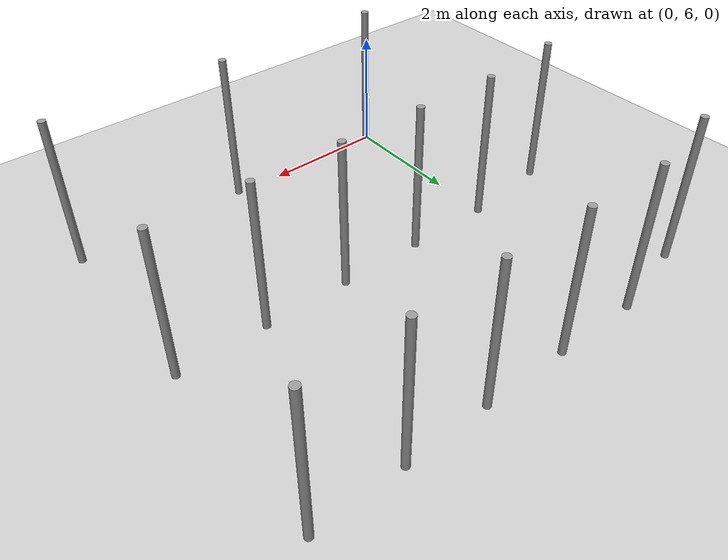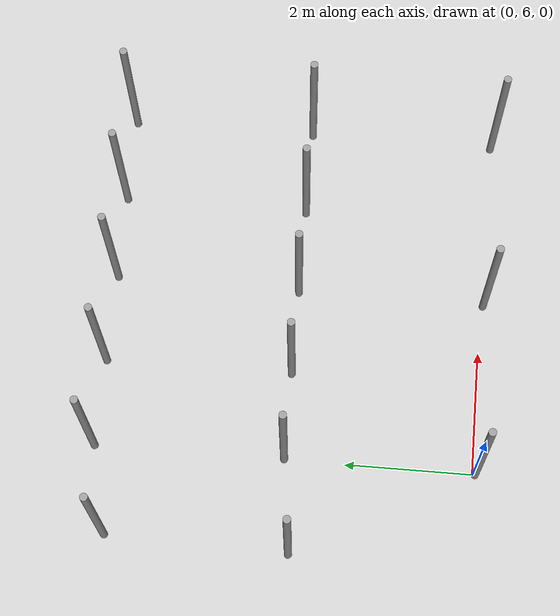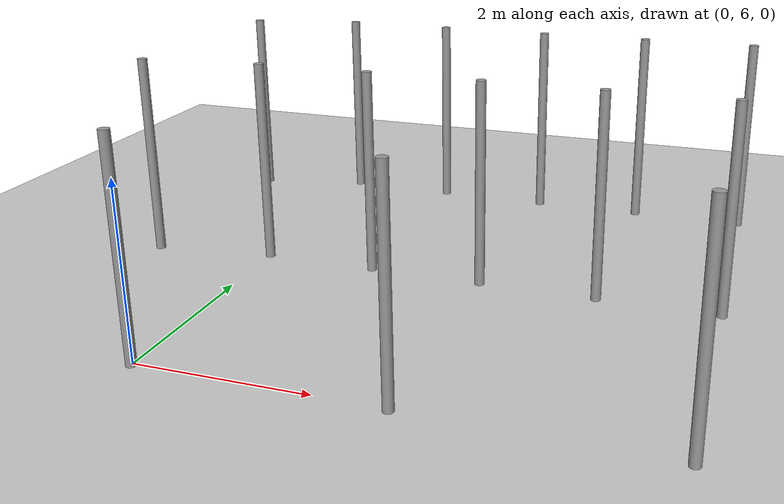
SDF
<sdf version="1.6">
 <world name="default">
  <model name="ground_plane">
   <static>1</static>
   <link name="link">
    <collision name="collision">
     <geometry><plane><normal>0 0 1</normal><size>100 100</size></plane></geometry>
     <surface><friction><ode><mu>100</mu><mu2>50</mu2></ode></friction></surface>
    </collision>
    <visual name="visual">
     <cast_shadows>0</cast_shadows>
     <geometry><plane><normal>0 0 1</normal><size>100 100</size></plane></geometry>
     <material>
      <script><uri>file://media/materials/scripts/gazebo.material</uri><name>Gazebo/Grey</name></script>
     </material>
    </visual>
   </link>
  </model>
  <model name="pole">
   <link name="link_0">
    <inertial>
     <mass>0.0364582</mass>
     <inertia>
      <ixx>0.00312124</ixx>
      <ixy>0</ixy>
      <ixz>0</ixz>
      <iyy>0.00312124</iyy>
      <iyz>0</iyz>
      <izz>0.00016615</izz>
     </inertia>
    </inertial>
    <visual name="visual">
     <geometry><cylinder><radius>0.06</radius><length>2.5</length></cylinder></geometry>
     <material>
      <lighting>1</lighting>
      <script><uri>file://media/materials/scripts/gazebo.material</uri><name>Gazebo/Grey</name></script>
      <ambient>0.3 0.3 0.3 1</ambient>
      <diffuse>0.7 0.7 0.7 1</diffuse>
      <specular>0.01 0.01 0.01 1</specular>
      <emissive>0 0 0 1</emissive>
      <shader type="vertex"><normal_map>__default__</normal_map></shader>
     </material>
    </visual>
    <collision name="collision">
     <geometry><cylinder><radius>0.06</radius><length>2.5</length></cylinder></geometry>
     <surface>
      <friction>
       <ode><mu>1</mu><mu2>1</mu2><fdir1>0 0 0</fdir1><slip1>0</slip1><slip2>0</slip2></ode>
       <torsional>
        <coefficient>1</coefficient>
        <patch_radius>0</patch_radius>
        <surface_radius>0</surface_radius>
        <use_patch_radius>1</use_patch_radius>
        <ode><slip>0</slip></ode>
       </torsional>
      </friction>
      <bounce><restitution_coefficient>0</restitution_coefficient><threshold>1e+06</threshold></bounce>
      <contact>
       <collide_without_contact>0</collide_without_contact>
       <collide_without_contact_bitmask>1</collide_without_contact_bitmask>
       <collide_bitmask>1</collide_bitmask>
       <ode>
        <soft_cfm>0</soft_cfm>
        <soft_erp>0.2</soft_erp>
        <kp>1e+13</kp>
        <kd>1</kd>
        <max_vel>0.01</max_vel>
        <min_depth>0</min_depth>
       </ode>
       <bullet>
        <split_impulse>1</split_impulse>
        <split_impulse_penetration_threshold>-0.01</split_impulse_penetration_threshold>
        <soft_cfm>0</soft_cfm>
        <soft_erp>0.2</soft_erp>
        <kp>1e+13</kp>
        <kd>1</kd>
       </bullet>
      </contact>
     </surface>
    </collision>
   </link>
   <static>0</static>
   <pose>0.00729 5.96546 1.24999 0 1e-06 -0.061917</pose>
  </model>
  <model name="pole_0">
   <link name="link_0">
    <inertial>
     <mass>0.0364582</mass>
     <inertia>
      <ixx>0.00312124</ixx>
      <ixy>0</ixy>
      <ixz>0</ixz>
      <iyy>0.00312124</iyy>
      <iyz>0</iyz>
      <izz>0.00016615</izz>
     </inertia>
    </inertial>
    <visual name="visual">
     <geometry><cylinder><radius>0.06</radius><length>2.5</length></cylinder></geometry>
     <material>
      <lighting>1</lighting>
      <script><uri>file://media/materials/scripts/gazebo.material</uri><name>Gazebo/Grey</name></script>
      <ambient>0.3 0.3 0.3 1</ambient>
      <diffuse>0.7 0.7 0.7 1</diffuse>
      <specular>0.01 0.01 0.01 1</specular>
      <emissive>0 0 0 1</emissive>
      <shader type="vertex"><normal_map>__default__</normal_map></shader>
     </material>
    </visual>
    <collision name="collision">
     <geometry><cylinder><radius>0.06</radius><length>2.5</length></cylinder></geometry>
     <surface>
      <friction>
       <ode><mu>1</mu><mu2>1</mu2><fdir1>0 0 0</fdir1><slip1>0</slip1><slip2>0</slip2></ode>
       <torsional>
        <coefficient>1</coefficient>
        <patch_radius>0</patch_radius>
        <surface_radius>0</surface_radius>
        <use_patch_radius>1</use_patch_radius>
        <ode><slip>0</slip></ode>
       </torsional>
      </friction>
      <bounce><restitution_coefficient>0</restitution_coefficient><threshold>1e+06</threshold></bounce>
      <contact>
       <collide_without_contact>0</collide_without_contact>
       <collide_without_contact_bitmask>1</collide_without_contact_bitmask>
       <collide_bitmask>1</collide_bitmask>
       <ode>
        <soft_cfm>0</soft_cfm>
        <soft_erp>0.2</soft_erp>
        <kp>1e+13</kp>
        <kd>1</kd>
        <max_vel>0.01</max_vel>
        <min_depth>0</min_depth>
       </ode>
       <bullet>
        <split_impulse>1</split_impulse>
        <split_impulse_penetration_threshold>-0.01</split_impulse_penetration_threshold>
        <soft_cfm>0</soft_cfm>
        <soft_erp>0.2</soft_erp>
        <kp>1e+13</kp>
        <kd>1</kd>
       </bullet>
      </contact>
     </surface>
    </collision>
   </link>
   <static>0</static>
   <pose>0.014052 8.94503 1.24999 -1e-06 1e-06 -0.061083</pose>
  </model>
  <model name="pole_1">
   <link name="link_0">
    <inertial>
     <mass>0.0364582</mass>
     <inertia>
      <ixx>0.00312124</ixx>
      <ixy>0</ixy>
      <ixz>0</ixz>
      <iyy>0.00312124</iyy>
      <iyz>0</iyz>
      <izz>0.00016615</izz>
     </inertia>
    </inertial>
    <visual name="visual">
     <geometry><cylinder><radius>0.06</radius><length>2.5</length></cylinder></geometry>
     <material>
      <lighting>1</lighting>
      <script><uri>file://media/materials/scripts/gazebo.material</uri><name>Gazebo/Grey</name></script>
      <ambient>0.3 0.3 0.3 1</ambient>
      <diffuse>0.7 0.7 0.7 1</diffuse>
      <specular>0.01 0.01 0.01 1</specular>
      <emissive>0 0 0 1</emissive>
      <shader type="vertex"><normal_map>__default__</normal_map></shader>
     </material>
    </visual>
    <collision name="collision">
     <geometry><cylinder><radius>0.06</radius><length>2.5</length></cylinder></geometry>
     <surface>
      <friction>
       <ode><mu>1</mu><mu2>1</mu2><fdir1>0 0 0</fdir1><slip1>0</slip1><slip2>0</slip2></ode>
       <torsional>
        <coefficient>1</coefficient>
        <patch_radius>0</patch_radius>
        <surface_radius>0</surface_radius>
        <use_patch_radius>1</use_patch_radius>
        <ode><slip>0</slip></ode>
       </torsional>
      </friction>
      <bounce><restitution_coefficient>0</restitution_coefficient><threshold>1e+06</threshold></bounce>
      <contact>
       <collide_without_contact>0</collide_without_contact>
       <collide_without_contact_bitmask>1</collide_without_contact_bitmask>
       <collide_bitmask>1</collide_bitmask>
       <ode>
        <soft_cfm>0</soft_cfm>
        <soft_erp>0.2</soft_erp>
        <kp>1e+13</kp>
        <kd>1</kd>
        <max_vel>0.01</max_vel>
        <min_depth>0</min_depth>
       </ode>
       <bullet>
        <split_impulse>1</split_impulse>
        <split_impulse_penetration_threshold>-0.01</split_impulse_penetration_threshold>
        <soft_cfm>0</soft_cfm>
        <soft_erp>0.2</soft_erp>
        <kp>1e+13</kp>
        <kd>1</kd>
       </bullet>
      </contact>
     </surface>
    </collision>
   </link>
   <static>0</static>
   <pose>-0.007502 11.9252 1.24999 -1e-06 1e-06 -0.066059</pose>
  </model>
  <model name="pole_13">
   <link name="link_0">
    <inertial>
     <mass>0.0364582</mass>
     <inertia>
      <ixx>0.00312124</ixx>
      <ixy>0</ixy>
      <ixz>0</ixz>
      <iyy>0.00312124</iyy>
      <iyz>0</iyz>
      <izz>0.00016615</izz>
     </inertia>
    </inertial>
    <visual name="visual">
     <geometry><cylinder><radius>0.06</radius><length>2.5</length></cylinder></geometry>
     <material>
      <lighting>1</lighting>
      <script><uri>file://media/materials/scripts/gazebo.material</uri><name>Gazebo/Grey</name></script>
      <ambient>0.3 0.3 0.3 1</ambient>
      <diffuse>0.7 0.7 0.7 1</diffuse>
      <specular>0.01 0.01 0.01 1</specular>
      <emissive>0 0 0 1</emissive>
      <shader type="vertex"><normal_map>__default__</normal_map></shader>
     </material>
    </visual>
    <collision name="collision">
     <geometry><cylinder><radius>0.06</radius><length>2.5</length></cylinder></geometry>
     <surface>
      <friction>
       <ode><mu>1</mu><mu2>1</mu2><fdir1>0 0 0</fdir1><slip1>0</slip1><slip2>0</slip2></ode>
       <torsional>
        <coefficient>1</coefficient>
        <patch_radius>0</patch_radius>
        <surface_radius>0</surface_radius>
        <use_patch_radius>1</use_patch_radius>
        <ode><slip>0</slip></ode>
       </torsional>
      </friction>
      <bounce><restitution_coefficient>0</restitution_coefficient><threshold>1e+06</threshold></bounce>
      <contact>
       <collide_without_contact>0</collide_without_contact>
       <collide_without_contact_bitmask>1</collide_without_contact_bitmask>
       <collide_bitmask>1</collide_bitmask>
       <ode>
        <soft_cfm>0</soft_cfm>
        <soft_erp>0.2</soft_erp>
        <kp>1e+13</kp>
        <kd>1</kd>
        <max_vel>0.01</max_vel>
        <min_depth>0</min_depth>
       </ode>
       <bullet>
        <split_impulse>1</split_impulse>
        <split_impulse_penetration_threshold>-0.01</split_impulse_penetration_threshold>
        <soft_cfm>0</soft_cfm>
        <soft_erp>0.2</soft_erp>
        <kp>1e+13</kp>
        <kd>1</kd>
       </bullet>
      </contact>
     </surface>
    </collision>
   </link>
   <static>0</static>
   <pose>2.80861 5.96514 1.25 -1e-06 -1e-06 -0.056191</pose>
  </model>
  <model name="pole_15">
   <link name="link_0">
    <inertial>
     <mass>0.0364582</mass>
     <inertia>
      <ixx>0.00312124</ixx>
      <ixy>0</ixy>
      <ixz>0</ixz>
      <iyy>0.00312124</iyy>
      <iyz>0</iyz>
      <izz>0.00016615</izz>
     </inertia>
    </inertial>
    <visual name="visual">
     <geometry><cylinder><radius>0.06</radius><length>2.5</length></cylinder></geometry>
     <material>
      <lighting>1</lighting>
      <script><uri>file://media/materials/scripts/gazebo.material</uri><name>Gazebo/Grey</name></script>
      <ambient>0.3 0.3 0.3 1</ambient>
      <diffuse>0.7 0.7 0.7 1</diffuse>
      <specular>0.01 0.01 0.01 1</specular>
      <emissive>0 0 0 1</emissive>
      <shader type="vertex"><normal_map>__default__</normal_map></shader>
     </material>
    </visual>
    <collision name="collision">
     <geometry><cylinder><radius>0.06</radius><length>2.5</length></cylinder></geometry>
     <surface>
      <friction>
       <ode><mu>1</mu><mu2>1</mu2><fdir1>0 0 0</fdir1><slip1>0</slip1><slip2>0</slip2></ode>
       <torsional>
        <coefficient>1</coefficient>
        <patch_radius>0</patch_radius>
        <surface_radius>0</surface_radius>
        <use_patch_radius>1</use_patch_radius>
        <ode><slip>0</slip></ode>
       </torsional>
      </friction>
      <bounce><restitution_coefficient>0</restitution_coefficient><threshold>1e+06</threshold></bounce>
      <contact>
       <collide_without_contact>0</collide_without_contact>
       <collide_without_contact_bitmask>1</collide_without_contact_bitmask>
       <collide_bitmask>1</collide_bitmask>
       <ode>
        <soft_cfm>0</soft_cfm>
        <soft_erp>0.2</soft_erp>
        <kp>1e+13</kp>
        <kd>1</kd>
        <max_vel>0.01</max_vel>
        <min_depth>0</min_depth>
       </ode>
       <bullet>
        <split_impulse>1</split_impulse>
        <split_impulse_penetration_threshold>-0.01</split_impulse_penetration_threshold>
        <soft_cfm>0</soft_cfm>
        <soft_erp>0.2</soft_erp>
        <kp>1e+13</kp>
        <kd>1</kd>
       </bullet>
      </contact>
     </surface>
    </collision>
   </link>
   <static>0</static>
   <pose>5.62404 5.96502 1.24999 0 2e-06 -0.052758</pose>
  </model>
  <model name="pole_16">
   <link name="link_0">
    <inertial>
     <mass>0.0364582</mass>
     <inertia>
      <ixx>0.00312124</ixx>
      <ixy>0</ixy>
      <ixz>0</ixz>
      <iyy>0.00312124</iyy>
      <iyz>0</iyz>
      <izz>0.00016615</izz>
     </inertia>
    </inertial>
    <visual name="visual">
     <geometry><cylinder><radius>0.06</radius><length>2.5</length></cylinder></geometry>
     <material>
      <lighting>1</lighting>
      <script><uri>file://media/materials/scripts/gazebo.material</uri><name>Gazebo/Grey</name></script>
      <ambient>0.3 0.3 0.3 1</ambient>
      <diffuse>0.7 0.7 0.7 1</diffuse>
      <specular>0.01 0.01 0.01 1</specular>
      <emissive>0 0 0 1</emissive>
      <shader type="vertex"><normal_map>__default__</normal_map></shader>
     </material>
    </visual>
    <collision name="collision">
     <geometry><cylinder><radius>0.06</radius><length>2.5</length></cylinder></geometry>
     <surface>
      <friction>
       <ode><mu>1</mu><mu2>1</mu2><fdir1>0 0 0</fdir1><slip1>0</slip1><slip2>0</slip2></ode>
       <torsional>
        <coefficient>1</coefficient>
        <patch_radius>0</patch_radius>
        <surface_radius>0</surface_radius>
        <use_patch_radius>1</use_patch_radius>
        <ode><slip>0</slip></ode>
       </torsional>
      </friction>
      <bounce><restitution_coefficient>0</restitution_coefficient><threshold>1e+06</threshold></bounce>
      <contact>
       <collide_without_contact>0</collide_without_contact>
       <collide_without_contact_bitmask>1</collide_without_contact_bitmask>
       <collide_bitmask>1</collide_bitmask>
       <ode>
        <soft_cfm>0</soft_cfm>
        <soft_erp>0.2</soft_erp>
        <kp>1e+13</kp>
        <kd>1</kd>
        <max_vel>0.01</max_vel>
        <min_depth>0</min_depth>
       </ode>
       <bullet>
        <split_impulse>1</split_impulse>
        <split_impulse_penetration_threshold>-0.01</split_impulse_penetration_threshold>
        <soft_cfm>0</soft_cfm>
        <soft_erp>0.2</soft_erp>
        <kp>1e+13</kp>
        <kd>1</kd>
       </bullet>
      </contact>
     </surface>
    </collision>
   </link>
   <static>0</static>
   <pose>1.41372 8.94489 1.24999 -1e-06 1e-06 -0.058688</pose>
  </model>
  <model name="pole_17">
   <link name="link_0">
    <inertial>
     <mass>0.0364582</mass>
     <inertia>
      <ixx>0.00312124</ixx>
      <ixy>0</ixy>
      <ixz>0</ixz>
      <iyy>0.00312124</iyy>
      <iyz>0</iyz>
      <izz>0.00016615</izz>
     </inertia>
    </inertial>
    <visual name="visual">
     <geometry><cylinder><radius>0.06</radius><length>2.5</length></cylinder></geometry>
     <material>
      <lighting>1</lighting>
      <script><uri>file://media/materials/scripts/gazebo.material</uri><name>Gazebo/Grey</name></script>
      <ambient>0.3 0.3 0.3 1</ambient>
      <diffuse>0.7 0.7 0.7 1</diffuse>
      <specular>0.01 0.01 0.01 1</specular>
      <emissive>0 0 0 1</emissive>
      <shader type="vertex"><normal_map>__default__</normal_map></shader>
     </material>
    </visual>
    <collision name="collision">
     <geometry><cylinder><radius>0.06</radius><length>2.5</length></cylinder></geometry>
     <surface>
      <friction>
       <ode><mu>1</mu><mu2>1</mu2><fdir1>0 0 0</fdir1><slip1>0</slip1><slip2>0</slip2></ode>
       <torsional>
        <coefficient>1</coefficient>
        <patch_radius>0</patch_radius>
        <surface_radius>0</surface_radius>
        <use_patch_radius>1</use_patch_radius>
        <ode><slip>0</slip></ode>
       </torsional>
      </friction>
      <bounce><restitution_coefficient>0</restitution_coefficient><threshold>1e+06</threshold></bounce>
      <contact>
       <collide_without_contact>0</collide_without_contact>
       <collide_without_contact_bitmask>1</collide_without_contact_bitmask>
       <collide_bitmask>1</collide_bitmask>
       <ode>
        <soft_cfm>0</soft_cfm>
        <soft_erp>0.2</soft_erp>
        <kp>1e+13</kp>
        <kd>1</kd>
        <max_vel>0.01</max_vel>
        <min_depth>0</min_depth>
       </ode>
       <bullet>
        <split_impulse>1</split_impulse>
        <split_impulse_penetration_threshold>-0.01</split_impulse_penetration_threshold>
        <soft_cfm>0</soft_cfm>
        <soft_erp>0.2</soft_erp>
        <kp>1e+13</kp>
        <kd>1</kd>
       </bullet>
      </contact>
     </surface>
    </collision>
   </link>
   <static>0</static>
   <pose>2.80046 8.9447 1.25 -1e-06 1e-06 -0.055294</pose>
  </model>
  <model name="pole_18">
   <link name="link_0">
    <inertial>
     <mass>0.0364582</mass>
     <inertia>
      <ixx>0.00312124</ixx>
      <ixy>0</ixy>
      <ixz>0</ixz>
      <iyy>0.00312124</iyy>
      <iyz>0</iyz>
      <izz>0.00016615</izz>
     </inertia>
    </inertial>
    <visual name="visual">
     <geometry><cylinder><radius>0.06</radius><length>2.5</length></cylinder></geometry>
     <material>
      <lighting>1</lighting>
      <script><uri>file://media/materials/scripts/gazebo.material</uri><name>Gazebo/Grey</name></script>
      <ambient>0.3 0.3 0.3 1</ambient>
      <diffuse>0.7 0.7 0.7 1</diffuse>
      <specular>0.01 0.01 0.01 1</specular>
      <emissive>0 0 0 1</emissive>
      <shader type="vertex"><normal_map>__default__</normal_map></shader>
     </material>
    </visual>
    <collision name="collision">
     <geometry><cylinder><radius>0.06</radius><length>2.5</length></cylinder></geometry>
     <surface>
      <friction>
       <ode><mu>1</mu><mu2>1</mu2><fdir1>0 0 0</fdir1><slip1>0</slip1><slip2>0</slip2></ode>
       <torsional>
        <coefficient>1</coefficient>
        <patch_radius>0</patch_radius>
        <surface_radius>0</surface_radius>
        <use_patch_radius>1</use_patch_radius>
        <ode><slip>0</slip></ode>
       </torsional>
      </friction>
      <bounce><restitution_coefficient>0</restitution_coefficient><threshold>1e+06</threshold></bounce>
      <contact>
       <collide_without_contact>0</collide_without_contact>
       <collide_without_contact_bitmask>1</collide_without_contact_bitmask>
       <collide_bitmask>1</collide_bitmask>
       <ode>
        <soft_cfm>0</soft_cfm>
        <soft_erp>0.2</soft_erp>
        <kp>1e+13</kp>
        <kd>1</kd>
        <max_vel>0.01</max_vel>
        <min_depth>0</min_depth>
       </ode>
       <bullet>
        <split_impulse>1</split_impulse>
        <split_impulse_penetration_threshold>-0.01</split_impulse_penetration_threshold>
        <soft_cfm>0</soft_cfm>
        <soft_erp>0.2</soft_erp>
        <kp>1e+13</kp>
        <kd>1</kd>
       </bullet>
      </contact>
     </surface>
    </collision>
   </link>
   <static>0</static>
   <pose>4.20443 8.94484 1.24999 -1e-06 -0 -0.049304</pose>
  </model>
  <model name="pole_19">
   <link name="link_0">
    <inertial>
     <mass>0.0364582</mass>
     <inertia>
      <ixx>0.00312124</ixx>
      <ixy>0</ixy>
      <ixz>0</ixz>
      <iyy>0.00312124</iyy>
      <iyz>0</iyz>
      <izz>0.00016615</izz>
     </inertia>
    </inertial>
    <visual name="visual">
     <geometry><cylinder><radius>0.06</radius><length>2.5</length></cylinder></geometry>
     <material>
      <lighting>1</lighting>
      <script><uri>file://media/materials/scripts/gazebo.material</uri><name>Gazebo/Grey</name></script>
      <ambient>0.3 0.3 0.3 1</ambient>
      <diffuse>0.7 0.7 0.7 1</diffuse>
      <specular>0.01 0.01 0.01 1</specular>
      <emissive>0 0 0 1</emissive>
      <shader type="vertex"><normal_map>__default__</normal_map></shader>
     </material>
    </visual>
    <collision name="collision">
     <geometry><cylinder><radius>0.06</radius><length>2.5</length></cylinder></geometry>
     <surface>
      <friction>
       <ode><mu>1</mu><mu2>1</mu2><fdir1>0 0 0</fdir1><slip1>0</slip1><slip2>0</slip2></ode>
       <torsional>
        <coefficient>1</coefficient>
        <patch_radius>0</patch_radius>
        <surface_radius>0</surface_radius>
        <use_patch_radius>1</use_patch_radius>
        <ode><slip>0</slip></ode>
       </torsional>
      </friction>
      <bounce><restitution_coefficient>0</restitution_coefficient><threshold>1e+06</threshold></bounce>
      <contact>
       <collide_without_contact>0</collide_without_contact>
       <collide_without_contact_bitmask>1</collide_without_contact_bitmask>
       <collide_bitmask>1</collide_bitmask>
       <ode>
        <soft_cfm>0</soft_cfm>
        <soft_erp>0.2</soft_erp>
        <kp>1e+13</kp>
        <kd>1</kd>
        <max_vel>0.01</max_vel>
        <min_depth>0</min_depth>
       </ode>
       <bullet>
        <split_impulse>1</split_impulse>
        <split_impulse_penetration_threshold>-0.01</split_impulse_penetration_threshold>
        <soft_cfm>0</soft_cfm>
        <soft_erp>0.2</soft_erp>
        <kp>1e+13</kp>
        <kd>1</kd>
       </bullet>
      </contact>
     </surface>
    </collision>
   </link>
   <static>0</static>
   <pose>5.62994 8.94478 1.24999 0 -1e-06 -0.054503</pose>
  </model>
  <model name="pole_20">
   <link name="link_0">
    <inertial>
     <mass>0.0364582</mass>
     <inertia>
      <ixx>0.00312124</ixx>
      <ixy>0</ixy>
      <ixz>0</ixz>
      <iyy>0.00312124</iyy>
      <iyz>0</iyz>
      <izz>0.00016615</izz>
     </inertia>
    </inertial>
    <visual name="visual">
     <geometry><cylinder><radius>0.06</radius><length>2.5</length></cylinder></geometry>
     <material>
      <lighting>1</lighting>
      <script><uri>file://media/materials/scripts/gazebo.material</uri><name>Gazebo/Grey</name></script>
      <ambient>0.3 0.3 0.3 1</ambient>
      <diffuse>0.7 0.7 0.7 1</diffuse>
      <specular>0.01 0.01 0.01 1</specular>
      <emissive>0 0 0 1</emissive>
      <shader type="vertex"><normal_map>__default__</normal_map></shader>
     </material>
    </visual>
    <collision name="collision">
     <geometry><cylinder><radius>0.06</radius><length>2.5</length></cylinder></geometry>
     <surface>
      <friction>
       <ode><mu>1</mu><mu2>1</mu2><fdir1>0 0 0</fdir1><slip1>0</slip1><slip2>0</slip2></ode>
       <torsional>
        <coefficient>1</coefficient>
        <patch_radius>0</patch_radius>
        <surface_radius>0</surface_radius>
        <use_patch_radius>1</use_patch_radius>
        <ode><slip>0</slip></ode>
       </torsional>
      </friction>
      <bounce><restitution_coefficient>0</restitution_coefficient><threshold>1e+06</threshold></bounce>
      <contact>
       <collide_without_contact>0</collide_without_contact>
       <collide_without_contact_bitmask>1</collide_without_contact_bitmask>
       <collide_bitmask>1</collide_bitmask>
       <ode>
        <soft_cfm>0</soft_cfm>
        <soft_erp>0.2</soft_erp>
        <kp>1e+13</kp>
        <kd>1</kd>
        <max_vel>0.01</max_vel>
        <min_depth>0</min_depth>
       </ode>
       <bullet>
        <split_impulse>1</split_impulse>
        <split_impulse_penetration_threshold>-0.01</split_impulse_penetration_threshold>
        <soft_cfm>0</soft_cfm>
        <soft_erp>0.2</soft_erp>
        <kp>1e+13</kp>
        <kd>1</kd>
       </bullet>
      </contact>
     </surface>
    </collision>
   </link>
   <static>0</static>
   <pose>1.39636 11.9047 1.25 -1e-06 -1e-06 -0.049457</pose>
  </model>
  <model name="pole_21">
   <link name="link_0">
    <inertial>
     <mass>0.0364582</mass>
     <inertia>
      <ixx>0.00312124</ixx>
      <ixy>0</ixy>
      <ixz>0</ixz>
      <iyy>0.00312124</iyy>
      <iyz>0</iyz>
      <izz>0.00016615</izz>
     </inertia>
    </inertial>
    <visual name="visual">
     <geometry><cylinder><radius>0.06</radius><length>2.5</length></cylinder></geometry>
     <material>
      <lighting>1</lighting>
      <script><uri>file://media/materials/scripts/gazebo.material</uri><name>Gazebo/Grey</name></script>
      <ambient>0.3 0.3 0.3 1</ambient>
      <diffuse>0.7 0.7 0.7 1</diffuse>
      <specular>0.01 0.01 0.01 1</specular>
      <emissive>0 0 0 1</emissive>
      <shader type="vertex"><normal_map>__default__</normal_map></shader>
     </material>
    </visual>
    <collision name="collision">
     <geometry><cylinder><radius>0.06</radius><length>2.5</length></cylinder></geometry>
     <surface>
      <friction>
       <ode><mu>1</mu><mu2>1</mu2><fdir1>0 0 0</fdir1><slip1>0</slip1><slip2>0</slip2></ode>
       <torsional>
        <coefficient>1</coefficient>
        <patch_radius>0</patch_radius>
        <surface_radius>0</surface_radius>
        <use_patch_radius>1</use_patch_radius>
        <ode><slip>0</slip></ode>
       </torsional>
      </friction>
      <bounce><restitution_coefficient>0</restitution_coefficient><threshold>1e+06</threshold></bounce>
      <contact>
       <collide_without_contact>0</collide_without_contact>
       <collide_without_contact_bitmask>1</collide_without_contact_bitmask>
       <collide_bitmask>1</collide_bitmask>
       <ode>
        <soft_cfm>0</soft_cfm>
        <soft_erp>0.2</soft_erp>
        <kp>1e+13</kp>
        <kd>1</kd>
        <max_vel>0.01</max_vel>
        <min_depth>0</min_depth>
       </ode>
       <bullet>
        <split_impulse>1</split_impulse>
        <split_impulse_penetration_threshold>-0.01</split_impulse_penetration_threshold>
        <soft_cfm>0</soft_cfm>
        <soft_erp>0.2</soft_erp>
        <kp>1e+13</kp>
        <kd>1</kd>
       </bullet>
      </contact>
     </surface>
    </collision>
   </link>
   <static>0</static>
   <pose>2.83095 11.8915 1.24999 -0 -1e-06 0.415159</pose>
  </model>
  <model name="pole_22">
   <link name="link_0">
    <inertial>
     <mass>0.0364582</mass>
     <inertia>
      <ixx>0.00312124</ixx>
      <ixy>0</ixy>
      <ixz>0</ixz>
      <iyy>0.00312124</iyy>
      <iyz>0</iyz>
      <izz>0.00016615</izz>
     </inertia>
    </inertial>
    <visual name="visual">
     <geometry><cylinder><radius>0.06</radius><length>2.5</length></cylinder></geometry>
     <material>
      <lighting>1</lighting>
      <script><uri>file://media/materials/scripts/gazebo.material</uri><name>Gazebo/Grey</name></script>
      <ambient>0.3 0.3 0.3 1</ambient>
      <diffuse>0.7 0.7 0.7 1</diffuse>
      <specular>0.01 0.01 0.01 1</specular>
      <emissive>0 0 0 1</emissive>
      <shader type="vertex"><normal_map>__default__</normal_map></shader>
     </material>
    </visual>
    <collision name="collision">
     <geometry><cylinder><radius>0.06</radius><length>2.5</length></cylinder></geometry>
     <surface>
      <friction>
       <ode><mu>1</mu><mu2>1</mu2><fdir1>0 0 0</fdir1><slip1>0</slip1><slip2>0</slip2></ode>
       <torsional>
        <coefficient>1</coefficient>
        <patch_radius>0</patch_radius>
        <surface_radius>0</surface_radius>
        <use_patch_radius>1</use_patch_radius>
        <ode><slip>0</slip></ode>
       </torsional>
      </friction>
      <bounce><restitution_coefficient>0</restitution_coefficient><threshold>1e+06</threshold></bounce>
      <contact>
       <collide_without_contact>0</collide_without_contact>
       <collide_without_contact_bitmask>1</collide_without_contact_bitmask>
       <collide_bitmask>1</collide_bitmask>
       <ode>
        <soft_cfm>0</soft_cfm>
        <soft_erp>0.2</soft_erp>
        <kp>1e+13</kp>
        <kd>1</kd>
        <max_vel>0.01</max_vel>
        <min_depth>0</min_depth>
       </ode>
       <bullet>
        <split_impulse>1</split_impulse>
        <split_impulse_penetration_threshold>-0.01</split_impulse_penetration_threshold>
        <soft_cfm>0</soft_cfm>
        <soft_erp>0.2</soft_erp>
        <kp>1e+13</kp>
        <kd>1</kd>
       </bullet>
      </contact>
     </surface>
    </collision>
   </link>
   <static>0</static>
   <pose>4.21265 11.9043 1.25 -1e-06 2e-06 -0.047905</pose>
  </model>
  <model name="pole_23">
   <link name="link_0">
    <inertial>
     <mass>0.0364582</mass>
     <inertia>
      <ixx>0.00312124</ixx>
      <ixy>0</ixy>
      <ixz>0</ixz>
      <iyy>0.00312124</iyy>
      <iyz>0</iyz>
      <izz>0.00016615</izz>
     </inertia>
    </inertial>
    <visual name="visual">
     <geometry><cylinder><radius>0.06</radius><length>2.5</length></cylinder></geometry>
     <material>
      <lighting>1</lighting>
      <script><uri>file://media/materials/scripts/gazebo.material</uri><name>Gazebo/Grey</name></script>
      <ambient>0.3 0.3 0.3 1</ambient>
      <diffuse>0.7 0.7 0.7 1</diffuse>
      <specular>0.01 0.01 0.01 1</specular>
      <emissive>0 0 0 1</emissive>
      <shader type="vertex"><normal_map>__default__</normal_map></shader>
     </material>
    </visual>
    <collision name="collision">
     <geometry><cylinder><radius>0.06</radius><length>2.5</length></cylinder></geometry>
     <surface>
      <friction>
       <ode><mu>1</mu><mu2>1</mu2><fdir1>0 0 0</fdir1><slip1>0</slip1><slip2>0</slip2></ode>
       <torsional>
        <coefficient>1</coefficient>
        <patch_radius>0</patch_radius>
        <surface_radius>0</surface_radius>
        <use_patch_radius>1</use_patch_radius>
        <ode><slip>0</slip></ode>
       </torsional>
      </friction>
      <bounce><restitution_coefficient>0</restitution_coefficient><threshold>1e+06</threshold></bounce>
      <contact>
       <collide_without_contact>0</collide_without_contact>
       <collide_without_contact_bitmask>1</collide_without_contact_bitmask>
       <collide_bitmask>1</collide_bitmask>
       <ode>
        <soft_cfm>0</soft_cfm>
        <soft_erp>0.2</soft_erp>
        <kp>1e+13</kp>
        <kd>1</kd>
        <max_vel>0.01</max_vel>
        <min_depth>0</min_depth>
       </ode>
       <bullet>
        <split_impulse>1</split_impulse>
        <split_impulse_penetration_threshold>-0.01</split_impulse_penetration_threshold>
        <soft_cfm>0</soft_cfm>
        <soft_erp>0.2</soft_erp>
        <kp>1e+13</kp>
        <kd>1</kd>
       </bullet>
      </contact>
     </surface>
    </collision>
   </link>
   <static>0</static>
   <pose>5.61667 11.9047 1.24999 -0 1e-06 -0.050145</pose>
  </model>
  <model name="pole_2_clone_2">
   <link name="link_0">
    <inertial>
     <mass>0.0364582</mass>
     <inertia>
      <ixx>0.00312124</ixx>
      <ixy>0</ixy>
      <ixz>0</ixz>
      <iyy>0.00312124</iyy>
      <iyz>0</iyz>
      <izz>0.00016615</izz>
     </inertia>
    </inertial>
    <visual name="visual">
     <geometry><cylinder><radius>0.06</radius><length>2.5</length></cylinder></geometry>
     <material>
      <lighting>1</lighting>
      <script><uri>file://media/materials/scripts/gazebo.material</uri><name>Gazebo/Grey</name></script>
      <ambient>0.3 0.3 0.3 1</ambient>
      <diffuse>0.7 0.7 0.7 1</diffuse>
      <specular>0.01 0.01 0.01 1</specular>
      <emissive>0 0 0 1</emissive>
      <shader type="vertex"><normal_map>__default__</normal_map></shader>
     </material>
    </visual>
    <collision name="collision">
     <geometry><cylinder><radius>0.06</radius><length>2.5</length></cylinder></geometry>
     <surface>
      <friction>
       <ode><mu>1</mu><mu2>1</mu2><fdir1>0 0 0</fdir1><slip1>0</slip1><slip2>0</slip2></ode>
       <torsional>
        <coefficient>1</coefficient>
        <patch_radius>0</patch_radius>
        <surface_radius>0</surface_radius>
        <use_patch_radius>1</use_patch_radius>
        <ode><slip>0</slip></ode>
       </torsional>
      </friction>
      <bounce><restitution_coefficient>0</restitution_coefficient><threshold>1e+06</threshold></bounce>
      <contact>
       <collide_without_contact>0</collide_without_contact>
       <collide_without_contact_bitmask>1</collide_without_contact_bitmask>
       <collide_bitmask>1</collide_bitmask>
       <ode>
        <soft_cfm>0</soft_cfm>
        <soft_erp>0.2</soft_erp>
        <kp>1e+13</kp>
        <kd>1</kd>
        <max_vel>0.01</max_vel>
        <min_depth>0</min_depth>
       </ode>
       <bullet>
        <split_impulse>1</split_impulse>
        <split_impulse_penetration_threshold>-0.01</split_impulse_penetration_threshold>
        <soft_cfm>0</soft_cfm>
        <soft_erp>0.2</soft_erp>
        <kp>1e+13</kp>
        <kd>1</kd>
       </bullet>
      </contact>
     </surface>
    </collision>
   </link>
   <static>0</static>
   <pose>-1.47717 8.75643 1.25 -1e-06 -1e-06 -0.003511</pose>
  </model>
  <model name="pole_2_clone_3">
   <link name="link_0">
    <inertial>
     <mass>0.0364582</mass>
     <inertia>
      <ixx>0.00312124</ixx>
      <ixy>0</ixy>
      <ixz>0</ixz>
      <iyy>0.00312124</iyy>
      <iyz>0</iyz>
      <izz>0.00016615</izz>
     </inertia>
    </inertial>
    <visual name="visual">
     <geometry><cylinder><radius>0.06</radius><length>2.5</length></cylinder></geometry>
     <material>
      <lighting>1</lighting>
      <script><uri>file://media/materials/scripts/gazebo.material</uri><name>Gazebo/Grey</name></script>
      <ambient>0.3 0.3 0.3 1</ambient>
      <diffuse>0.7 0.7 0.7 1</diffuse>
      <specular>0.01 0.01 0.01 1</specular>
      <emissive>0 0 0 1</emissive>
      <shader type="vertex"><normal_map>__default__</normal_map></shader>
     </material>
    </visual>
    <collision name="collision">
     <geometry><cylinder><radius>0.06</radius><length>2.5</length></cylinder></geometry>
     <surface>
      <friction>
       <ode><mu>1</mu><mu2>1</mu2><fdir1>0 0 0</fdir1><slip1>0</slip1><slip2>0</slip2></ode>
       <torsional>
        <coefficient>1</coefficient>
        <patch_radius>0</patch_radius>
        <surface_radius>0</surface_radius>
        <use_patch_radius>1</use_patch_radius>
        <ode><slip>0</slip></ode>
       </torsional>
      </friction>
      <bounce><restitution_coefficient>0</restitution_coefficient><threshold>1e+06</threshold></bounce>
      <contact>
       <collide_without_contact>0</collide_without_contact>
       <collide_without_contact_bitmask>1</collide_without_contact_bitmask>
       <collide_bitmask>1</collide_bitmask>
       <ode>
        <soft_cfm>0</soft_cfm>
        <soft_erp>0.2</soft_erp>
        <kp>1e+13</kp>
        <kd>1</kd>
        <max_vel>0.01</max_vel>
        <min_depth>0</min_depth>
       </ode>
       <bullet>
        <split_impulse>1</split_impulse>
        <split_impulse_penetration_threshold>-0.01</split_impulse_penetration_threshold>
        <soft_cfm>0</soft_cfm>
        <soft_erp>0.2</soft_erp>
        <kp>1e+13</kp>
        <kd>1</kd>
       </bullet>
      </contact>
     </surface>
    </collision>
   </link>
   <static>0</static>
   <pose>-1.39945 11.6039 1.24999 1e-06 2e-06 0.002118</pose>
  </model>
 </world>
</sdf>
